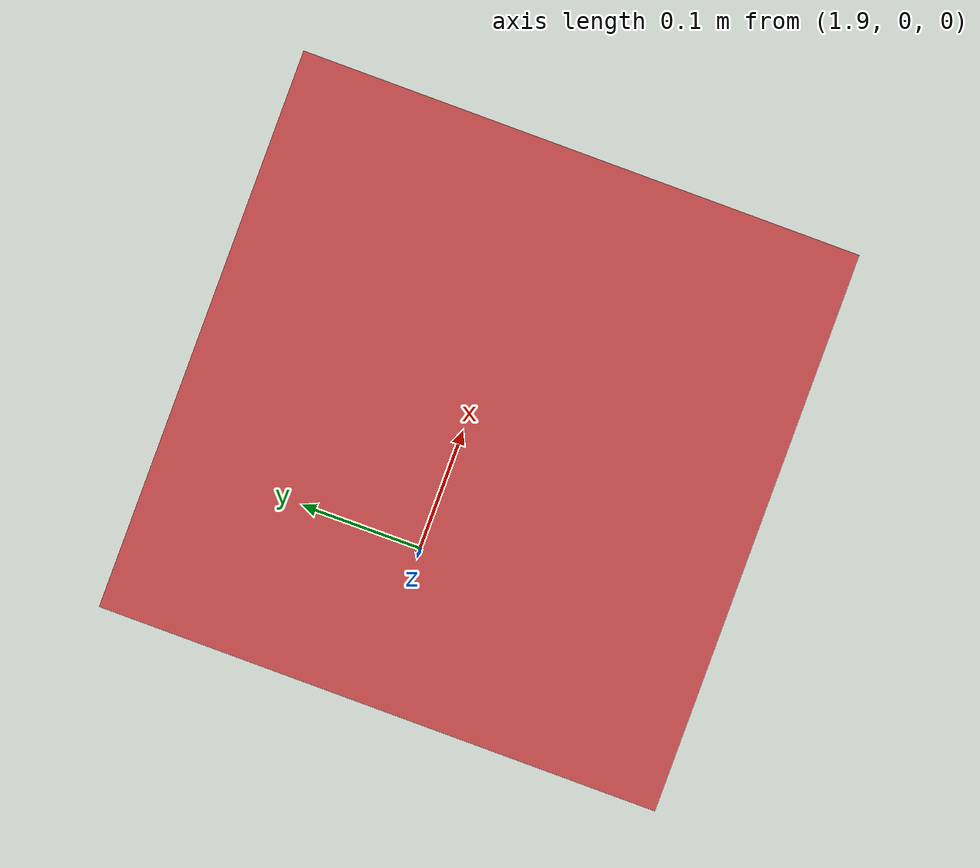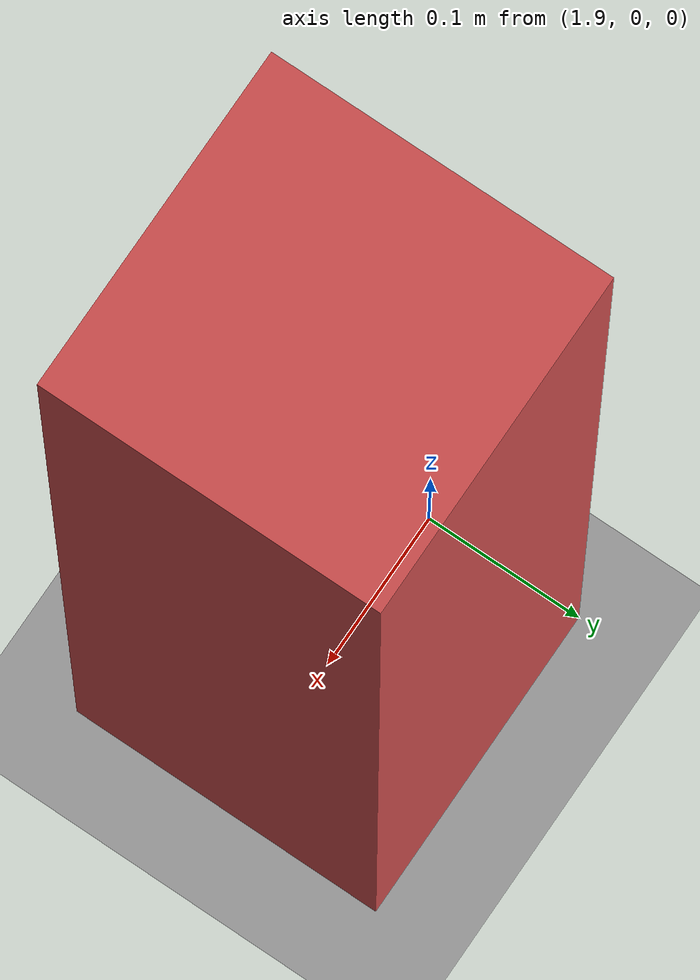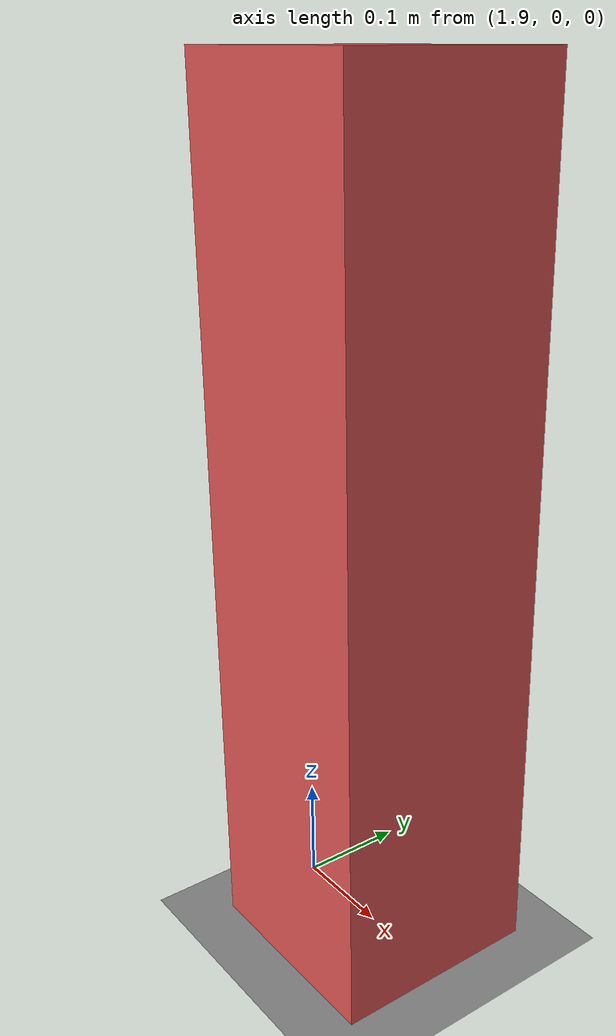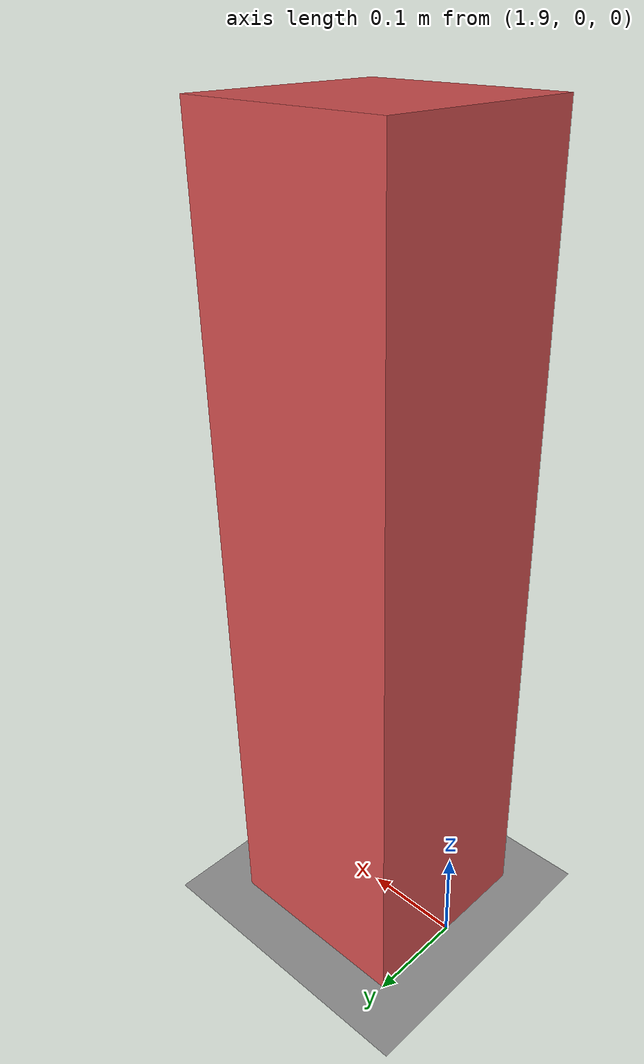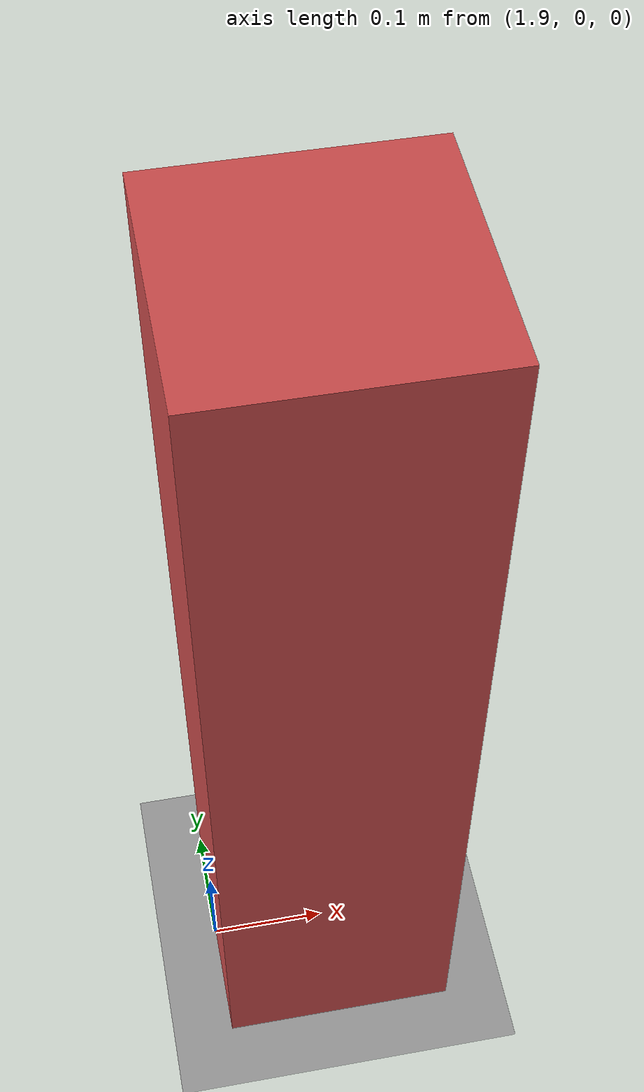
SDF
<?xml version="1.0" ?>
<!--
  empty.world  -  Gazebo Harmonic 默认验证场景
    包含：物理 + 用户命令系统 + 传感器系统 + 地面 + 光照
    专为 OCS2 mobile manipulator MPC 验证设计：场地空旷、便于调试
-->
<sdf version="1.9">
  <world name="empty">

    <!-- 物理引擎 -->
    <physics name="1ms" type="ignored">
      <max_step_size>0.002</max_step_size>
      <real_time_factor>1.0</real_time_factor>
    </physics>

    <!-- 必备系统插件（Gazebo Harmonic） -->
    <plugin filename="gz-sim-physics-system"
            name="gz::sim::systems::Physics"/>
    <plugin filename="gz-sim-user-commands-system"
            name="gz::sim::systems::UserCommands"/>
    <plugin filename="gz-sim-scene-broadcaster-system"
            name="gz::sim::systems::SceneBroadcaster"/>
    <plugin filename="gz-sim-sensors-system"
            name="gz::sim::systems::Sensors">
      <render_engine>ogre2</render_engine>
    </plugin>
    <plugin filename="gz-sim-imu-system"
            name="gz::sim::systems::Imu"/>
    <plugin filename="gz-sim-contact-system"
            name="gz::sim::systems::Contact"/>

    <!-- 太阳光 -->
    <light type="directional" name="sun">
      <cast_shadows>true</cast_shadows>
      <pose>0 0 10 0 0 0</pose>
      <diffuse>0.9 0.9 0.9 1</diffuse>
      <specular>0.2 0.2 0.2 1</specular>
      <direction>-0.5 0.1 -0.9</direction>
    </light>

    <!-- 地面（高摩擦，用于差速驱动） -->
    <model name="ground_plane">
      <static>true</static>
      <link name="link">
        <collision name="collision">
          <geometry>
            <plane>
              <normal>0 0 1</normal>
              <size>100 100</size>
            </plane>
          </geometry>
          <surface>
            <friction>
              <ode>
                <mu>1.0</mu>
                <mu2>1.0</mu2>
              </ode>
            </friction>
          </surface>
        </collision>
        <visual name="visual">
          <geometry>
            <plane>
              <normal>0 0 1</normal>
              <size>100 100</size>
            </plane>
          </geometry>
          <material>
            <ambient>0.4 0.4 0.4 1</ambient>
            <diffuse>0.6 0.6 0.6 1</diffuse>
            <specular>0.0 0.0 0.0 1</specular>
          </material>
        </visual>
      </link>
    </model>

    <!-- ===== 调试用障碍物（被 OCS2 self_collision 之外的环境碰撞用）===== -->
    <model name="target_box">
      <static>true</static>
      <pose>2.0 0.0 0.4 0 0 0</pose>
      <link name="link">
        <collision name="c">
          <geometry><box><size>0.2 0.2 0.8</size></box></geometry>
        </collision>
        <visual name="v">
          <geometry><box><size>0.2 0.2 0.8</size></box></geometry>
          <material>
            <ambient>0.7 0.2 0.2 1</ambient>
            <diffuse>0.8 0.3 0.3 1</diffuse>
          </material>
        </visual>
      </link>
    </model>

  </world>
</sdf>
